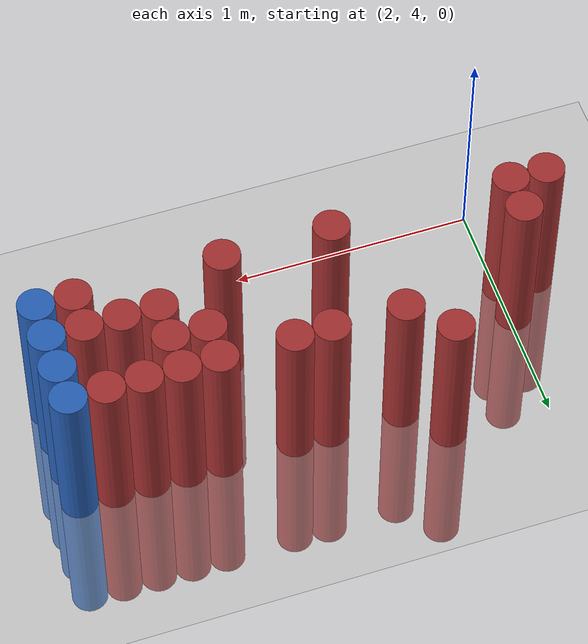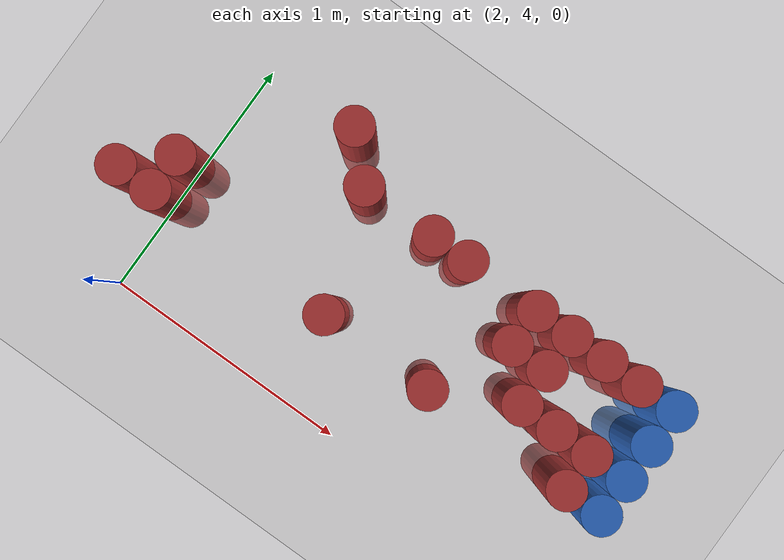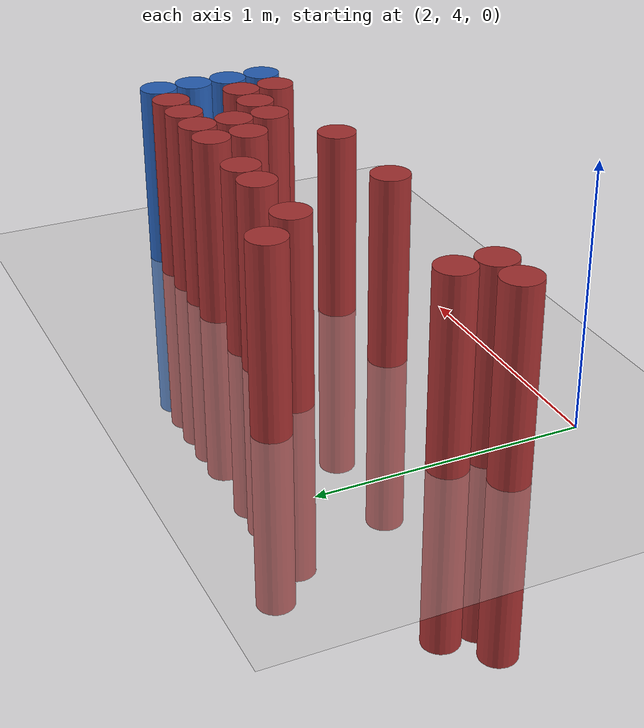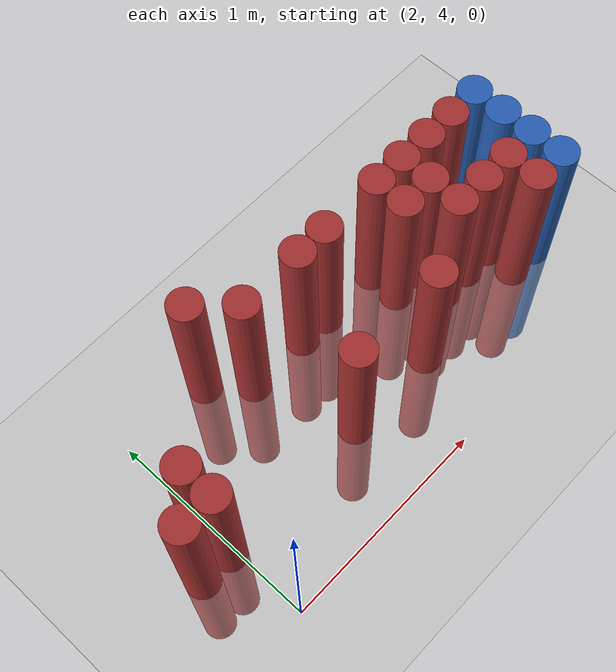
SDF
<sdf version="1.6">
 <world name="default">
  <model name="ground_plane">
   <static>1</static>
   <link name="link">
    <collision name="collision">
     <geometry><plane><normal>0 0 1</normal><size>100 100</size></plane></geometry>
     <surface><friction><ode><mu>100</mu><mu2>50</mu2></ode></friction></surface>
    </collision>
    <visual name="visual">
     <cast_shadows>0</cast_shadows>
     <geometry><plane><normal>0 0 1</normal><size>100 100</size></plane></geometry>
     <material>
      <script><uri>file://media/materials/scripts/gazebo.material</uri><name>Gazebo/Grey</name></script>
     </material>
    </visual>
   </link>
  </model>
  <model name="unit_cylinder_172">
   <static>1</static>
   <pose>3.925000 4.375000 0.000000 0.000000 0.000000 0.000000</pose>
   <link name="link">
    <inertial>
     <mass>1</mass>
     <inertia><ixx>0.145833</ixx><ixy>0</ixy><ixz>0</ixz><iyy>0.145833</iyy><iyz>0</iyz><izz>0.125</izz></inertia>
    </inertial>
    <collision name="collision">
     <geometry><cylinder><radius>0.075000</radius><length>1.5</length></cylinder></geometry>
    </collision>
    <visual name="visual">
     <geometry><cylinder><radius>0.075000</radius><length>1.5</length></cylinder></geometry>
     <material>
      <ambient>0.152000 0.379000 0.720000 1</ambient>
      <diffuse>0.152000 0.379000 0.720000 1</diffuse>
     </material>
     <material>
      <script><name>Gazebo/Grey</name><uri>file://media/materials/scripts/gazebo.material</uri></script>
     </material>
    </visual>
   </link>
  </model>
  <model name="unit_cylinder_174">
   <static>1</static>
   <pose>3.925000 4.525000 0.000000 0.000000 0.000000 0.000000</pose>
   <link name="link">
    <inertial>
     <mass>1</mass>
     <inertia><ixx>0.145833</ixx><ixy>0</ixy><ixz>0</ixz><iyy>0.145833</iyy><iyz>0</iyz><izz>0.125</izz></inertia>
    </inertial>
    <collision name="collision">
     <geometry><cylinder><radius>0.075000</radius><length>1.5</length></cylinder></geometry>
    </collision>
    <visual name="visual">
     <geometry><cylinder><radius>0.075000</radius><length>1.5</length></cylinder></geometry>
     <material>
      <ambient>0.152000 0.379000 0.720000 1</ambient>
      <diffuse>0.152000 0.379000 0.720000 1</diffuse>
     </material>
     <material>
      <script><name>Gazebo/Grey</name><uri>file://media/materials/scripts/gazebo.material</uri></script>
     </material>
    </visual>
   </link>
  </model>
  <model name="unit_cylinder_176">
   <static>1</static>
   <pose>3.925000 4.675000 0.000000 0.000000 0.000000 0.000000</pose>
   <link name="link">
    <inertial>
     <mass>1</mass>
     <inertia><ixx>0.145833</ixx><ixy>0</ixy><ixz>0</ixz><iyy>0.145833</iyy><iyz>0</iyz><izz>0.125</izz></inertia>
    </inertial>
    <collision name="collision">
     <geometry><cylinder><radius>0.075000</radius><length>1.5</length></cylinder></geometry>
    </collision>
    <visual name="visual">
     <geometry><cylinder><radius>0.075000</radius><length>1.5</length></cylinder></geometry>
     <material>
      <ambient>0.152000 0.379000 0.720000 1</ambient>
      <diffuse>0.152000 0.379000 0.720000 1</diffuse>
     </material>
     <material>
      <script><name>Gazebo/Grey</name><uri>file://media/materials/scripts/gazebo.material</uri></script>
     </material>
    </visual>
   </link>
  </model>
  <model name="unit_cylinder_178">
   <static>1</static>
   <pose>3.925000 4.825000 0.000000 0.000000 0.000000 0.000000</pose>
   <link name="link">
    <inertial>
     <mass>1</mass>
     <inertia><ixx>0.145833</ixx><ixy>0</ixy><ixz>0</ixz><iyy>0.145833</iyy><iyz>0</iyz><izz>0.125</izz></inertia>
    </inertial>
    <collision name="collision">
     <geometry><cylinder><radius>0.075000</radius><length>1.5</length></cylinder></geometry>
    </collision>
    <visual name="visual">
     <geometry><cylinder><radius>0.075000</radius><length>1.5</length></cylinder></geometry>
     <material>
      <ambient>0.152000 0.379000 0.720000 1</ambient>
      <diffuse>0.152000 0.379000 0.720000 1</diffuse>
     </material>
     <material>
      <script><name>Gazebo/Grey</name><uri>file://media/materials/scripts/gazebo.material</uri></script>
     </material>
    </visual>
   </link>
  </model>
  <model name="unit_cylinder_466">
   <static>1</static>
   <pose>1.825000 4.375000 0.000000 0.000000 0.000000 0.000000</pose>
   <link name="link">
    <inertial>
     <mass>1</mass>
     <inertia><ixx>0.145833</ixx><ixy>0</ixy><ixz>0</ixz><iyy>0.145833</iyy><iyz>0</iyz><izz>0.125</izz></inertia>
    </inertial>
    <collision name="collision">
     <geometry><cylinder><radius>0.075000</radius><length>1.5</length></cylinder></geometry>
    </collision>
    <visual name="visual">
     <geometry><cylinder><radius>0.075000</radius><length>1.5</length></cylinder></geometry>
     <material>
      <ambient>0.648000 0.192000 0.192000 1</ambient>
      <diffuse>0.648000 0.192000 0.192000 1</diffuse>
     </material>
     <material>
      <script><name>Gazebo/Grey</name><uri>file://media/materials/scripts/gazebo.material</uri></script>
     </material>
    </visual>
   </link>
  </model>
  <model name="unit_cylinder_476">
   <static>1</static>
   <pose>1.975000 4.375000 0.000000 0.000000 0.000000 0.000000</pose>
   <link name="link">
    <inertial>
     <mass>1</mass>
     <inertia><ixx>0.145833</ixx><ixy>0</ixy><ixz>0</ixz><iyy>0.145833</iyy><iyz>0</iyz><izz>0.125</izz></inertia>
    </inertial>
    <collision name="collision">
     <geometry><cylinder><radius>0.075000</radius><length>1.5</length></cylinder></geometry>
    </collision>
    <visual name="visual">
     <geometry><cylinder><radius>0.075000</radius><length>1.5</length></cylinder></geometry>
     <material>
      <ambient>0.648000 0.192000 0.192000 1</ambient>
      <diffuse>0.648000 0.192000 0.192000 1</diffuse>
     </material>
     <material>
      <script><name>Gazebo/Grey</name><uri>file://media/materials/scripts/gazebo.material</uri></script>
     </material>
    </visual>
   </link>
  </model>
  <model name="unit_cylinder_477">
   <static>1</static>
   <pose>1.975000 4.525000 0.000000 0.000000 0.000000 0.000000</pose>
   <link name="link">
    <inertial>
     <mass>1</mass>
     <inertia><ixx>0.145833</ixx><ixy>0</ixy><ixz>0</ixz><iyy>0.145833</iyy><iyz>0</iyz><izz>0.125</izz></inertia>
    </inertial>
    <collision name="collision">
     <geometry><cylinder><radius>0.075000</radius><length>1.5</length></cylinder></geometry>
    </collision>
    <visual name="visual">
     <geometry><cylinder><radius>0.075000</radius><length>1.5</length></cylinder></geometry>
     <material>
      <ambient>0.648000 0.192000 0.192000 1</ambient>
      <diffuse>0.648000 0.192000 0.192000 1</diffuse>
     </material>
     <material>
      <script><name>Gazebo/Grey</name><uri>file://media/materials/scripts/gazebo.material</uri></script>
     </material>
    </visual>
   </link>
  </model>
  <model name="unit_cylinder_513">
   <static>1</static>
   <pose>2.425000 4.975000 0.000000 0.000000 0.000000 0.000000</pose>
   <link name="link">
    <inertial>
     <mass>1</mass>
     <inertia><ixx>0.145833</ixx><ixy>0</ixy><ixz>0</ixz><iyy>0.145833</iyy><iyz>0</iyz><izz>0.125</izz></inertia>
    </inertial>
    <collision name="collision">
     <geometry><cylinder><radius>0.075000</radius><length>1.5</length></cylinder></geometry>
    </collision>
    <visual name="visual">
     <geometry><cylinder><radius>0.075000</radius><length>1.5</length></cylinder></geometry>
     <material>
      <ambient>0.648000 0.192000 0.192000 1</ambient>
      <diffuse>0.648000 0.192000 0.192000 1</diffuse>
     </material>
     <material>
      <script><name>Gazebo/Grey</name><uri>file://media/materials/scripts/gazebo.material</uri></script>
     </material>
    </visual>
   </link>
  </model>
  <model name="unit_cylinder_520">
   <static>1</static>
   <pose>2.575000 4.825000 0.000000 0.000000 0.000000 0.000000</pose>
   <link name="link">
    <inertial>
     <mass>1</mass>
     <inertia><ixx>0.145833</ixx><ixy>0</ixy><ixz>0</ixz><iyy>0.145833</iyy><iyz>0</iyz><izz>0.125</izz></inertia>
    </inertial>
    <collision name="collision">
     <geometry><cylinder><radius>0.075000</radius><length>1.5</length></cylinder></geometry>
    </collision>
    <visual name="visual">
     <geometry><cylinder><radius>0.075000</radius><length>1.5</length></cylinder></geometry>
     <material>
      <ambient>0.648000 0.192000 0.192000 1</ambient>
      <diffuse>0.648000 0.192000 0.192000 1</diffuse>
     </material>
     <material>
      <script><name>Gazebo/Grey</name><uri>file://media/materials/scripts/gazebo.material</uri></script>
     </material>
    </visual>
   </link>
  </model>
  <model name="unit_cylinder_532">
   <static>1</static>
   <pose>2.725000 4.375000 0.000000 0.000000 0.000000 0.000000</pose>
   <link name="link">
    <inertial>
     <mass>1</mass>
     <inertia><ixx>0.145833</ixx><ixy>0</ixy><ixz>0</ixz><iyy>0.145833</iyy><iyz>0</iyz><izz>0.125</izz></inertia>
    </inertial>
    <collision name="collision">
     <geometry><cylinder><radius>0.075000</radius><length>1.5</length></cylinder></geometry>
    </collision>
    <visual name="visual">
     <geometry><cylinder><radius>0.075000</radius><length>1.5</length></cylinder></geometry>
     <material>
      <ambient>0.648000 0.192000 0.192000 1</ambient>
      <diffuse>0.648000 0.192000 0.192000 1</diffuse>
     </material>
     <material>
      <script><name>Gazebo/Grey</name><uri>file://media/materials/scripts/gazebo.material</uri></script>
     </material>
    </visual>
   </link>
  </model>
  <model name="unit_cylinder_541">
   <static>1</static>
   <pose>2.875000 4.825000 0.000000 0.000000 0.000000 0.000000</pose>
   <link name="link">
    <inertial>
     <mass>1</mass>
     <inertia><ixx>0.145833</ixx><ixy>0</ixy><ixz>0</ixz><iyy>0.145833</iyy><iyz>0</iyz><izz>0.125</izz></inertia>
    </inertial>
    <collision name="collision">
     <geometry><cylinder><radius>0.075000</radius><length>1.5</length></cylinder></geometry>
    </collision>
    <visual name="visual">
     <geometry><cylinder><radius>0.075000</radius><length>1.5</length></cylinder></geometry>
     <material>
      <ambient>0.648000 0.192000 0.192000 1</ambient>
      <diffuse>0.648000 0.192000 0.192000 1</diffuse>
     </material>
     <material>
      <script><name>Gazebo/Grey</name><uri>file://media/materials/scripts/gazebo.material</uri></script>
     </material>
    </visual>
   </link>
  </model>
  <model name="unit_cylinder_548">
   <static>1</static>
   <pose>3.025000 4.825000 0.000000 0.000000 0.000000 0.000000</pose>
   <link name="link">
    <inertial>
     <mass>1</mass>
     <inertia><ixx>0.145833</ixx><ixy>0</ixy><ixz>0</ixz><iyy>0.145833</iyy><iyz>0</iyz><izz>0.125</izz></inertia>
    </inertial>
    <collision name="collision">
     <geometry><cylinder><radius>0.075000</radius><length>1.5</length></cylinder></geometry>
    </collision>
    <visual name="visual">
     <geometry><cylinder><radius>0.075000</radius><length>1.5</length></cylinder></geometry>
     <material>
      <ambient>0.648000 0.192000 0.192000 1</ambient>
      <diffuse>0.648000 0.192000 0.192000 1</diffuse>
     </material>
     <material>
      <script><name>Gazebo/Grey</name><uri>file://media/materials/scripts/gazebo.material</uri></script>
     </material>
    </visual>
   </link>
  </model>
  <model name="unit_cylinder_553">
   <static>1</static>
   <pose>3.175000 4.375000 0.000000 0.000000 0.000000 0.000000</pose>
   <link name="link">
    <inertial>
     <mass>1</mass>
     <inertia><ixx>0.145833</ixx><ixy>0</ixy><ixz>0</ixz><iyy>0.145833</iyy><iyz>0</iyz><izz>0.125</izz></inertia>
    </inertial>
    <collision name="collision">
     <geometry><cylinder><radius>0.075000</radius><length>1.5</length></cylinder></geometry>
    </collision>
    <visual name="visual">
     <geometry><cylinder><radius>0.075000</radius><length>1.5</length></cylinder></geometry>
     <material>
      <ambient>0.648000 0.192000 0.192000 1</ambient>
      <diffuse>0.648000 0.192000 0.192000 1</diffuse>
     </material>
     <material>
      <script><name>Gazebo/Grey</name><uri>file://media/materials/scripts/gazebo.material</uri></script>
     </material>
    </visual>
   </link>
  </model>
  <model name="unit_cylinder_556">
   <static>1</static>
   <pose>3.325000 4.675000 0.000000 0.000000 0.000000 0.000000</pose>
   <link name="link">
    <inertial>
     <mass>1</mass>
     <inertia><ixx>0.145833</ixx><ixy>0</ixy><ixz>0</ixz><iyy>0.145833</iyy><iyz>0</iyz><izz>0.125</izz></inertia>
    </inertial>
    <collision name="collision">
     <geometry><cylinder><radius>0.075000</radius><length>1.5</length></cylinder></geometry>
    </collision>
    <visual name="visual">
     <geometry><cylinder><radius>0.075000</radius><length>1.5</length></cylinder></geometry>
     <material>
      <ambient>0.648000 0.192000 0.192000 1</ambient>
      <diffuse>0.648000 0.192000 0.192000 1</diffuse>
     </material>
     <material>
      <script><name>Gazebo/Grey</name><uri>file://media/materials/scripts/gazebo.material</uri></script>
     </material>
    </visual>
   </link>
  </model>
  <model name="unit_cylinder_557">
   <static>1</static>
   <pose>3.325000 4.825000 0.000000 0.000000 0.000000 0.000000</pose>
   <link name="link">
    <inertial>
     <mass>1</mass>
     <inertia><ixx>0.145833</ixx><ixy>0</ixy><ixz>0</ixz><iyy>0.145833</iyy><iyz>0</iyz><izz>0.125</izz></inertia>
    </inertial>
    <collision name="collision">
     <geometry><cylinder><radius>0.075000</radius><length>1.5</length></cylinder></geometry>
    </collision>
    <visual name="visual">
     <geometry><cylinder><radius>0.075000</radius><length>1.5</length></cylinder></geometry>
     <material>
      <ambient>0.648000 0.192000 0.192000 1</ambient>
      <diffuse>0.648000 0.192000 0.192000 1</diffuse>
     </material>
     <material>
      <script><name>Gazebo/Grey</name><uri>file://media/materials/scripts/gazebo.material</uri></script>
     </material>
    </visual>
   </link>
  </model>
  <model name="unit_cylinder_560">
   <static>1</static>
   <pose>3.475000 4.525000 0.000000 0.000000 0.000000 0.000000</pose>
   <link name="link">
    <inertial>
     <mass>1</mass>
     <inertia><ixx>0.145833</ixx><ixy>0</ixy><ixz>0</ixz><iyy>0.145833</iyy><iyz>0</iyz><izz>0.125</izz></inertia>
    </inertial>
    <collision name="collision">
     <geometry><cylinder><radius>0.075000</radius><length>1.5</length></cylinder></geometry>
    </collision>
    <visual name="visual">
     <geometry><cylinder><radius>0.075000</radius><length>1.5</length></cylinder></geometry>
     <material>
      <ambient>0.648000 0.192000 0.192000 1</ambient>
      <diffuse>0.648000 0.192000 0.192000 1</diffuse>
     </material>
     <material>
      <script><name>Gazebo/Grey</name><uri>file://media/materials/scripts/gazebo.material</uri></script>
     </material>
    </visual>
   </link>
  </model>
  <model name="unit_cylinder_561">
   <static>1</static>
   <pose>3.475000 4.675000 0.000000 0.000000 0.000000 0.000000</pose>
   <link name="link">
    <inertial>
     <mass>1</mass>
     <inertia><ixx>0.145833</ixx><ixy>0</ixy><ixz>0</ixz><iyy>0.145833</iyy><iyz>0</iyz><izz>0.125</izz></inertia>
    </inertial>
    <collision name="collision">
     <geometry><cylinder><radius>0.075000</radius><length>1.5</length></cylinder></geometry>
    </collision>
    <visual name="visual">
     <geometry><cylinder><radius>0.075000</radius><length>1.5</length></cylinder></geometry>
     <material>
      <ambient>0.648000 0.192000 0.192000 1</ambient>
      <diffuse>0.648000 0.192000 0.192000 1</diffuse>
     </material>
     <material>
      <script><name>Gazebo/Grey</name><uri>file://media/materials/scripts/gazebo.material</uri></script>
     </material>
    </visual>
   </link>
  </model>
  <model name="unit_cylinder_562">
   <static>1</static>
   <pose>3.475000 4.825000 0.000000 0.000000 0.000000 0.000000</pose>
   <link name="link">
    <inertial>
     <mass>1</mass>
     <inertia><ixx>0.145833</ixx><ixy>0</ixy><ixz>0</ixz><iyy>0.145833</iyy><iyz>0</iyz><izz>0.125</izz></inertia>
    </inertial>
    <collision name="collision">
     <geometry><cylinder><radius>0.075000</radius><length>1.5</length></cylinder></geometry>
    </collision>
    <visual name="visual">
     <geometry><cylinder><radius>0.075000</radius><length>1.5</length></cylinder></geometry>
     <material>
      <ambient>0.648000 0.192000 0.192000 1</ambient>
      <diffuse>0.648000 0.192000 0.192000 1</diffuse>
     </material>
     <material>
      <script><name>Gazebo/Grey</name><uri>file://media/materials/scripts/gazebo.material</uri></script>
     </material>
    </visual>
   </link>
  </model>
  <model name="unit_cylinder_575">
   <static>1</static>
   <pose>3.625000 4.525000 0.000000 0.000000 0.000000 0.000000</pose>
   <link name="link">
    <inertial>
     <mass>1</mass>
     <inertia><ixx>0.145833</ixx><ixy>0</ixy><ixz>0</ixz><iyy>0.145833</iyy><iyz>0</iyz><izz>0.125</izz></inertia>
    </inertial>
    <collision name="collision">
     <geometry><cylinder><radius>0.075000</radius><length>1.5</length></cylinder></geometry>
    </collision>
    <visual name="visual">
     <geometry><cylinder><radius>0.075000</radius><length>1.5</length></cylinder></geometry>
     <material>
      <ambient>0.648000 0.192000 0.192000 1</ambient>
      <diffuse>0.648000 0.192000 0.192000 1</diffuse>
     </material>
     <material>
      <script><name>Gazebo/Grey</name><uri>file://media/materials/scripts/gazebo.material</uri></script>
     </material>
    </visual>
   </link>
  </model>
  <model name="unit_cylinder_576">
   <static>1</static>
   <pose>3.625000 4.825000 0.000000 0.000000 0.000000 0.000000</pose>
   <link name="link">
    <inertial>
     <mass>1</mass>
     <inertia><ixx>0.145833</ixx><ixy>0</ixy><ixz>0</ixz><iyy>0.145833</iyy><iyz>0</iyz><izz>0.125</izz></inertia>
    </inertial>
    <collision name="collision">
     <geometry><cylinder><radius>0.075000</radius><length>1.5</length></cylinder></geometry>
    </collision>
    <visual name="visual">
     <geometry><cylinder><radius>0.075000</radius><length>1.5</length></cylinder></geometry>
     <material>
      <ambient>0.648000 0.192000 0.192000 1</ambient>
      <diffuse>0.648000 0.192000 0.192000 1</diffuse>
     </material>
     <material>
      <script><name>Gazebo/Grey</name><uri>file://media/materials/scripts/gazebo.material</uri></script>
     </material>
    </visual>
   </link>
  </model>
  <model name="unit_cylinder_596">
   <static>1</static>
   <pose>3.775000 4.375000 0.000000 0.000000 0.000000 0.000000</pose>
   <link name="link">
    <inertial>
     <mass>1</mass>
     <inertia><ixx>0.145833</ixx><ixy>0</ixy><ixz>0</ixz><iyy>0.145833</iyy><iyz>0</iyz><izz>0.125</izz></inertia>
    </inertial>
    <collision name="collision">
     <geometry><cylinder><radius>0.075000</radius><length>1.5</length></cylinder></geometry>
    </collision>
    <visual name="visual">
     <geometry><cylinder><radius>0.075000</radius><length>1.5</length></cylinder></geometry>
     <material>
      <ambient>0.648000 0.192000 0.192000 1</ambient>
      <diffuse>0.648000 0.192000 0.192000 1</diffuse>
     </material>
     <material>
      <script><name>Gazebo/Grey</name><uri>file://media/materials/scripts/gazebo.material</uri></script>
     </material>
    </visual>
   </link>
  </model>
  <model name="unit_cylinder_597">
   <static>1</static>
   <pose>3.775000 4.525000 0.000000 0.000000 0.000000 0.000000</pose>
   <link name="link">
    <inertial>
     <mass>1</mass>
     <inertia><ixx>0.145833</ixx><ixy>0</ixy><ixz>0</ixz><iyy>0.145833</iyy><iyz>0</iyz><izz>0.125</izz></inertia>
    </inertial>
    <collision name="collision">
     <geometry><cylinder><radius>0.075000</radius><length>1.5</length></cylinder></geometry>
    </collision>
    <visual name="visual">
     <geometry><cylinder><radius>0.075000</radius><length>1.5</length></cylinder></geometry>
     <material>
      <ambient>0.648000 0.192000 0.192000 1</ambient>
      <diffuse>0.648000 0.192000 0.192000 1</diffuse>
     </material>
     <material>
      <script><name>Gazebo/Grey</name><uri>file://media/materials/scripts/gazebo.material</uri></script>
     </material>
    </visual>
   </link>
  </model>
  <model name="unit_cylinder_598">
   <static>1</static>
   <pose>3.775000 4.825000 0.000000 0.000000 0.000000 0.000000</pose>
   <link name="link">
    <inertial>
     <mass>1</mass>
     <inertia><ixx>0.145833</ixx><ixy>0</ixy><ixz>0</ixz><iyy>0.145833</iyy><iyz>0</iyz><izz>0.125</izz></inertia>
    </inertial>
    <collision name="collision">
     <geometry><cylinder><radius>0.075000</radius><length>1.5</length></cylinder></geometry>
    </collision>
    <visual name="visual">
     <geometry><cylinder><radius>0.075000</radius><length>1.5</length></cylinder></geometry>
     <material>
      <ambient>0.648000 0.192000 0.192000 1</ambient>
      <diffuse>0.648000 0.192000 0.192000 1</diffuse>
     </material>
     <material>
      <script><name>Gazebo/Grey</name><uri>file://media/materials/scripts/gazebo.material</uri></script>
     </material>
    </visual>
   </link>
  </model>
  <model name="unit_cylinder_642">
   <static>1</static>
   <pose>3.925000 4.375000 0.000000 0.000000 0.000000 0.000000</pose>
   <link name="link">
    <inertial>
     <mass>1</mass>
     <inertia><ixx>0.145833</ixx><ixy>0</ixy><ixz>0</ixz><iyy>0.145833</iyy><iyz>0</iyz><izz>0.125</izz></inertia>
    </inertial>
    <collision name="collision">
     <geometry><cylinder><radius>0.075000</radius><length>1.5</length></cylinder></geometry>
    </collision>
    <visual name="visual">
     <geometry><cylinder><radius>0.075000</radius><length>1.5</length></cylinder></geometry>
     <material>
      <ambient>0.152000 0.379000 0.720000 1</ambient>
      <diffuse>0.152000 0.379000 0.720000 1</diffuse>
     </material>
     <material>
      <script><name>Gazebo/Grey</name><uri>file://media/materials/scripts/gazebo.material</uri></script>
     </material>
    </visual>
   </link>
  </model>
  <model name="unit_cylinder_643">
   <static>1</static>
   <pose>3.925000 4.525000 0.000000 0.000000 0.000000 0.000000</pose>
   <link name="link">
    <inertial>
     <mass>1</mass>
     <inertia><ixx>0.145833</ixx><ixy>0</ixy><ixz>0</ixz><iyy>0.145833</iyy><iyz>0</iyz><izz>0.125</izz></inertia>
    </inertial>
    <collision name="collision">
     <geometry><cylinder><radius>0.075000</radius><length>1.5</length></cylinder></geometry>
    </collision>
    <visual name="visual">
     <geometry><cylinder><radius>0.075000</radius><length>1.5</length></cylinder></geometry>
     <material>
      <ambient>0.152000 0.379000 0.720000 1</ambient>
      <diffuse>0.152000 0.379000 0.720000 1</diffuse>
     </material>
     <material>
      <script><name>Gazebo/Grey</name><uri>file://media/materials/scripts/gazebo.material</uri></script>
     </material>
    </visual>
   </link>
  </model>
  <model name="unit_cylinder_644">
   <static>1</static>
   <pose>3.925000 4.675000 0.000000 0.000000 0.000000 0.000000</pose>
   <link name="link">
    <inertial>
     <mass>1</mass>
     <inertia><ixx>0.145833</ixx><ixy>0</ixy><ixz>0</ixz><iyy>0.145833</iyy><iyz>0</iyz><izz>0.125</izz></inertia>
    </inertial>
    <collision name="collision">
     <geometry><cylinder><radius>0.075000</radius><length>1.5</length></cylinder></geometry>
    </collision>
    <visual name="visual">
     <geometry><cylinder><radius>0.075000</radius><length>1.5</length></cylinder></geometry>
     <material>
      <ambient>0.152000 0.379000 0.720000 1</ambient>
      <diffuse>0.152000 0.379000 0.720000 1</diffuse>
     </material>
     <material>
      <script><name>Gazebo/Grey</name><uri>file://media/materials/scripts/gazebo.material</uri></script>
     </material>
    </visual>
   </link>
  </model>
  <model name="unit_cylinder_645">
   <static>1</static>
   <pose>3.925000 4.825000 0.000000 0.000000 0.000000 0.000000</pose>
   <link name="link">
    <inertial>
     <mass>1</mass>
     <inertia><ixx>0.145833</ixx><ixy>0</ixy><ixz>0</ixz><iyy>0.145833</iyy><iyz>0</iyz><izz>0.125</izz></inertia>
    </inertial>
    <collision name="collision">
     <geometry><cylinder><radius>0.075000</radius><length>1.5</length></cylinder></geometry>
    </collision>
    <visual name="visual">
     <geometry><cylinder><radius>0.075000</radius><length>1.5</length></cylinder></geometry>
     <material>
      <ambient>0.152000 0.379000 0.720000 1</ambient>
      <diffuse>0.152000 0.379000 0.720000 1</diffuse>
     </material>
     <material>
      <script><name>Gazebo/Grey</name><uri>file://media/materials/scripts/gazebo.material</uri></script>
     </material>
    </visual>
   </link>
  </model>
 </world>
</sdf>
